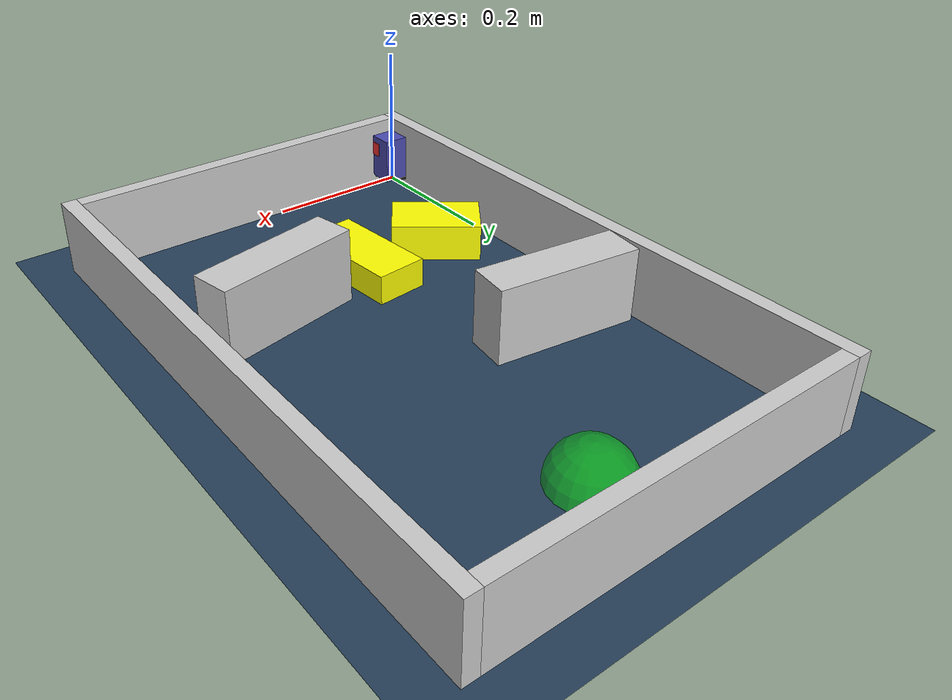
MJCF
<?xml version="1.0" ?>
<mujoco model="generated_environment">
  <option cone="elliptic" integrator="implicitfast" iterations="100" timestep="0.002"/>
  <default>
    <geom density="1"/>
  </default>
  <asset>
    <texture builtin="gradient" height="3072" rgb1="0.3 0.5 0.7" rgb2="0 0 0" type="skybox" width="512"/>
    <texture builtin="checker" height="300" mark="edge" markrgb="0.8 0.8 0.8" name="groundplane" rgb1="0.2 0.3 0.4" rgb2="0.1 0.2 0.3" type="2d" width="300"/>
    <material name="groundplane" reflectance="0.2" texrepeat="5 5" texture="groundplane" texuniform="true"/>
    <material name="robot" rgba="1.0 1.0 0.0 1.0"/>
  </asset>
  <include file="/home/dhruv/projects_dhruv/namo/namo_cpp/test_xml/little-car-modeling-package/assets/mjcf/little_car.xml"/>
  <worldbody>
    <light dir="0 0 -1" directional="true" pos="0 0 1.5"/>
    <geom condim="4" friction="0.5 0.005 0.001" material="groundplane" name="floor" size="0 0 0.05" type="plane"/>
    <body name="walls">
      <geom name="wall_1" condim="4" pos="-0.01 0.3875 0.05" friction="1 0.005 0.0001" rgba="0.800000011920929 0.800000011920929 0.800000011920929 1.0" size="0.01 0.40750000000000003 0.05" type="box"/>
      <geom name="wall_2" condim="4" pos="0.5 0.3875 0.05" friction="1 0.005 0.0001" rgba="0.800000011920929 0.800000011920929 0.800000011920929 1.0" size="0.01 0.40750000000000003 0.05" type="box"/>
      <geom name="wall_3" condim="4" pos="0.245 -0.01 0.05" friction="1 0.005 0.0001" rgba="0.800000011920929 0.800000011920929 0.800000011920929 1.0" size="0.245 0.01 0.05" type="box"/>
      <geom name="wall_4" condim="4" pos="0.245 0.785 0.05" friction="1 0.005 0.0001" rgba="0.800000011920929 0.800000011920929 0.800000011920929 1.0" size="0.245 0.01 0.05" type="box"/>
    </body>
    <body name="obstacle_1_movable">
      <geom name="obstacle_1_movable" condim="4" pos="0.20419303416046966 0.21900611569730657 0.02" quat="-0.046909298017646754 0 0 0.9988991529476294" friction="1 0.005 0.0001" rgba="1 1 0 1" size="0.035 0.075 0.02" type="box" mass="0.1"/>
      <joint type="free"/>
    </body>
    <body name="obstacle_2_movable">
      <geom name="obstacle_2_movable" condim="4" pos="0.08355318871581315 0.217239115805148 0.025" quat="0.8953981705843744 0 0 0.44526634289395317" friction="1 0.005 0.0001" rgba="1 1 0 1" size="0.0375 0.06 0.025" type="box" mass="0.1"/>
      <joint type="free"/>
    </body>
    <body name="wall_5">
      <geom name="wall_5" condim="4" pos="0.35566931598609225 0.25595239390538693 0.05" quat="0.6328206388214702 0 0 0.7742984173311904" friction="1 0.005 0.0001" rgba="0.800000011920929 0.800000011920929 0.800000011920929 1.0" size="0.0275 0.0975 0.05" type="box"/>
    </body>
    <body name="wall_6">
      <geom name="wall_6" condim="4" pos="0.10103515617906587 0.4703932624176062 0.05" quat="0.7520930943648406 0 0 0.6590568848048846" friction="1 0.005 0.0001" rgba="0.800000011920929 0.800000011920929 0.800000011920929 1.0" size="0.0275 0.0975 0.05" type="box"/>
    </body>
    <site name="goal" type="sphere" size="0.05 0.05 0.05" rgba="0 1 0 0.5" pos="0.257073 0.6879890000000001 0.0"/>
  </worldbody>
</mujoco>

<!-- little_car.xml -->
<mujoco model="little_car">
  <compiler angle="radian" autolimits="true"/>
  <default>
    <geom condim="4"/>
    <joint damping="0.01" armature="0.0001"/>
  </default>
  <worldbody>
    <body name="car" pos="0 0 0.010000">
      <freejoint name="car_freejoint"/>
      <inertial pos="0.000000 0 0.037500" mass="0.350000"
                diaginertia="0.000266 0.000266 0.000286"/>
      <geom name="front_chassis_collision" type="box" pos="0.017500 0 0.037500"
            size="0.017500 0.035000 0.032500"
            rgba="0.3 0.3 0.7 1"/>
      <geom name="rear_chassis_collision" type="box" pos="-0.017500 0 0.037500"
            size="0.017500 0.035000 0.032500"
            rgba="0.25 0.25 0.6 1"/>
      <geom name="front_marker" type="box" pos="0.034000 0 0.050500"
            size="0.002000 0.015000 0.010000"
            rgba="1.0 0.2 0.2 1" contype="0" conaffinity="0"/>

      <body name="rear_support_body" pos="-0.030000 0.000000 0.002500">
        <joint name="rear_caster_joint" type="ball" damping="0.0001"/>
        <inertial pos="0 0 0" mass="0.025000"
                  diaginertia="0.000001 0.000001 0.000001"/>
        <geom name="rear_support" type="sphere"
              pos="0 0 0"
              size="0.002500"
              friction="0.000000 0.000000 0.000000"
              rgba="0.7 0.1 0.1 1"/>
      </body>

      <body name="front_support_body" pos="0.030000 0.000000 0.002500">
        <joint name="front_caster_joint" type="ball" damping="0.0001"/>
        <inertial pos="0 0 0" mass="0.025000"
                  diaginertia="0.000001 0.000001 0.000001"/>
        <geom name="front_support" type="sphere"
              pos="0 0 0"
              size="0.002500"
              friction="0.000000 0.000000 0.000000"
              rgba="0.1 0.7 0.1 1"/>
      </body>

      <body name="left_wheel" pos="0.000000 0.034000 0.015000">
        <inertial pos="0 0 0" mass="0.050000"
                  diaginertia="0.000003 0.000006 0.000003"/>
        <joint name="left_wheel_joint" type="hinge" axis="0 1 0"/>
        <geom name="left_wheel_collision" type="cylinder" size="0.015000 0.000500"
              euler="1.57079632679 0 0" rgba="0.1 0.1 0.1 1"/>
      </body>

      <body name="right_wheel" pos="0.000000 -0.034000 0.015000">
        <inertial pos="0 0 0" mass="0.050000"
                  diaginertia="0.000003 0.000006 0.000003"/>
        <joint name="right_wheel_joint" type="hinge" axis="0 1 0"/>
        <geom name="right_wheel_collision" type="cylinder" size="0.015000 0.000500"
              euler="1.57079632679 0 0" rgba="0.1 0.1 0.1 1"/>
      </body>
    </body>
  </worldbody>
  <contact>
    <exclude body1="car" body2="left_wheel"/>
    <exclude body1="car" body2="right_wheel"/>
  </contact>
  <actuator>
    <velocity name="left_wheel_drive" joint="left_wheel_joint"
              ctrlrange="-25.000000 25.000000"
              kv="0.750000" forcerange="-0.500000 0.500000"/>
    <velocity name="right_wheel_drive" joint="right_wheel_joint"
              ctrlrange="-25.000000 25.000000"
              kv="0.750000" forcerange="-0.500000 0.500000"/>
  </actuator>
</mujoco>
